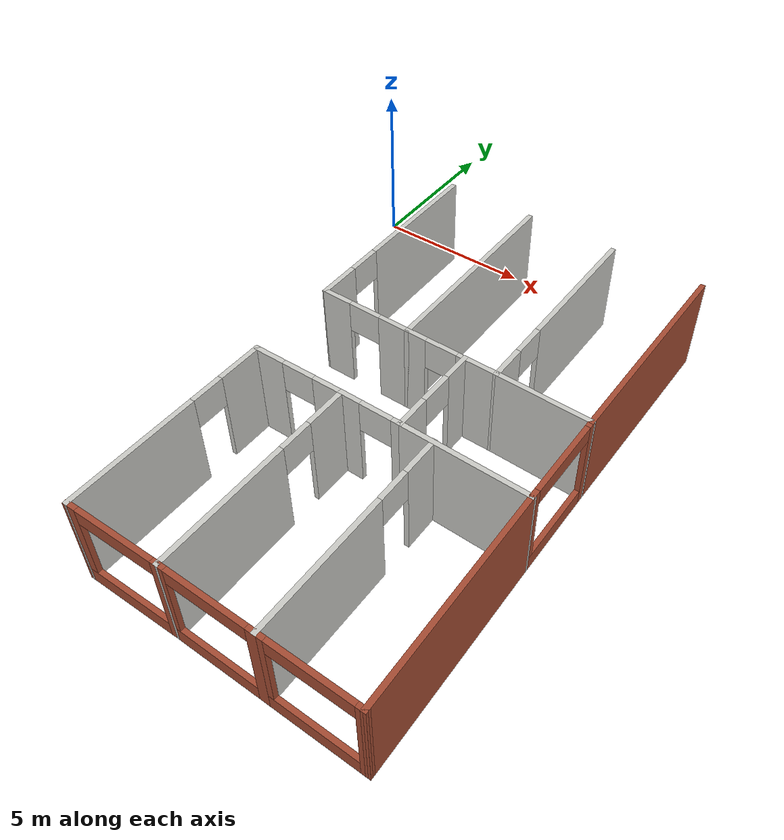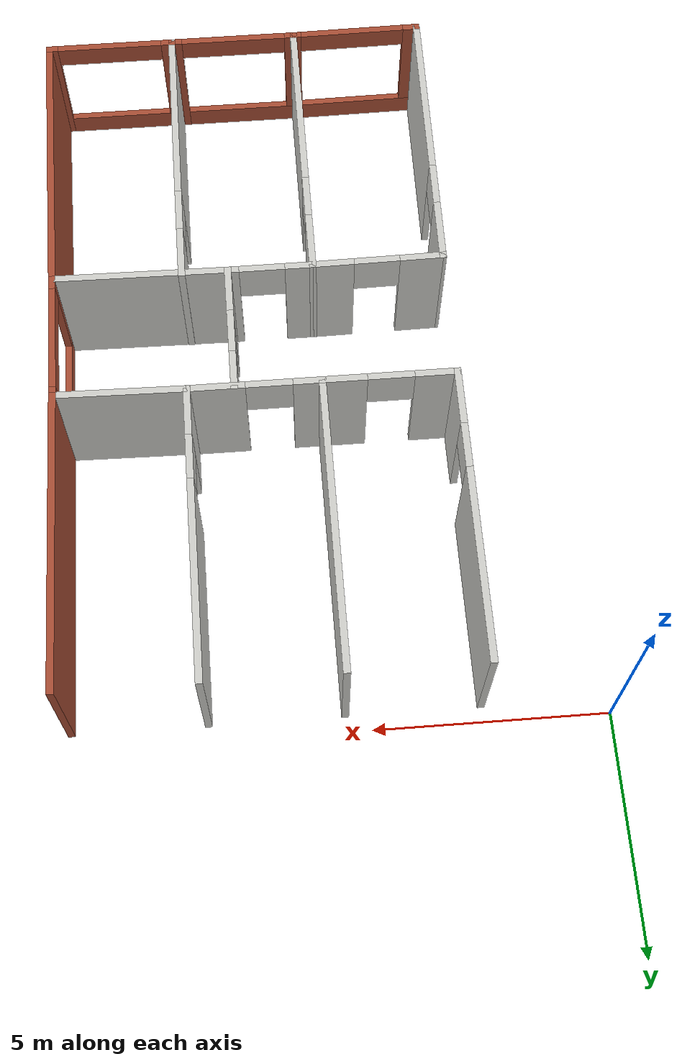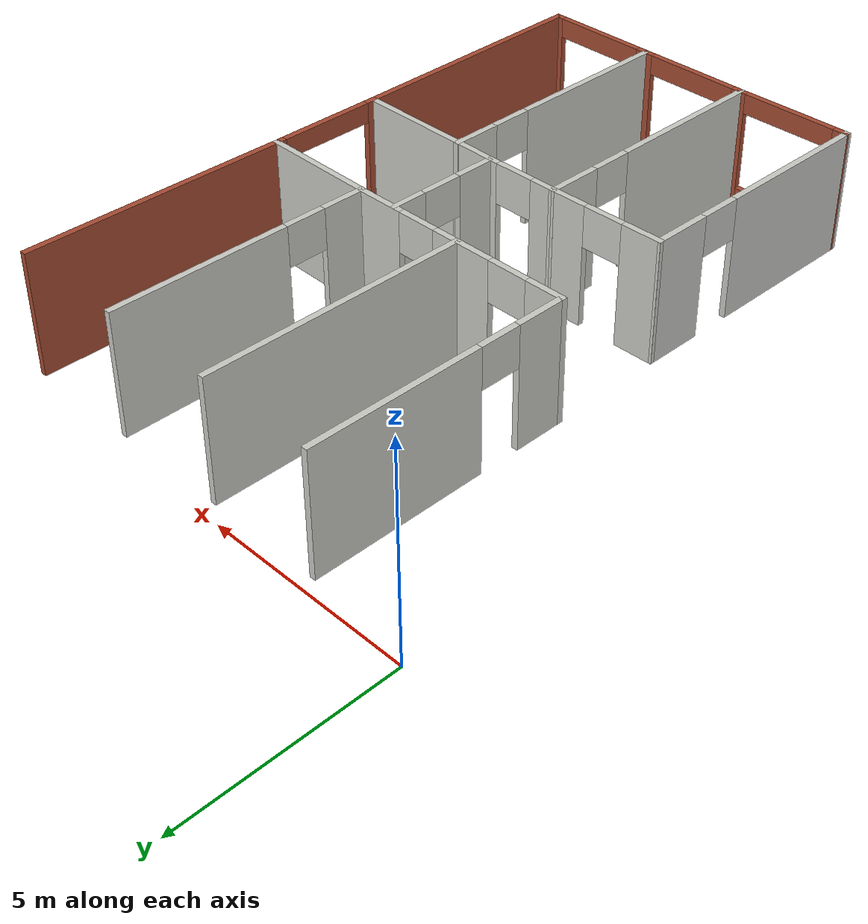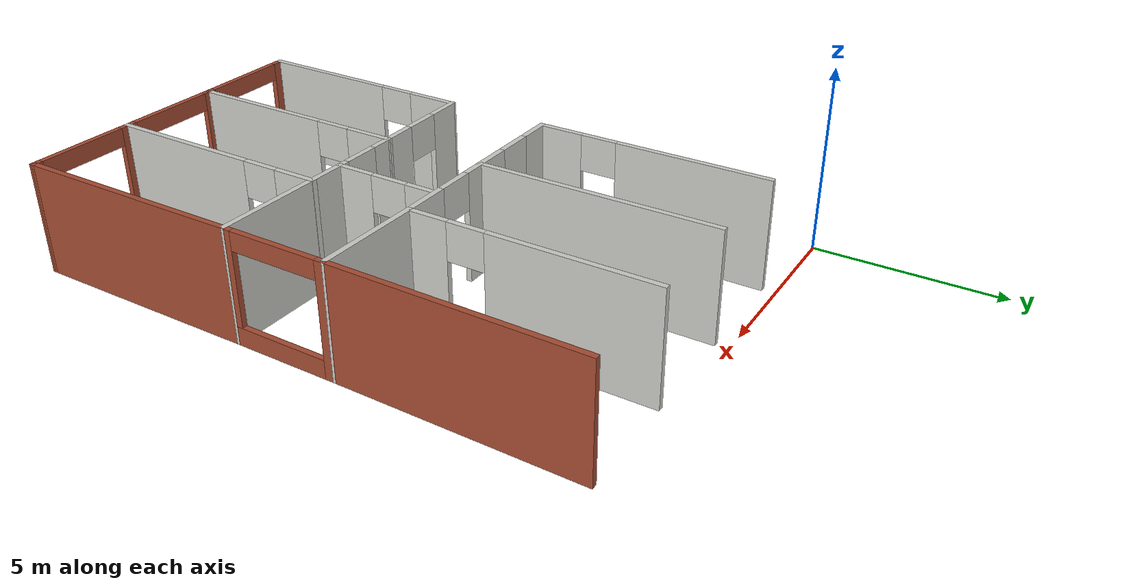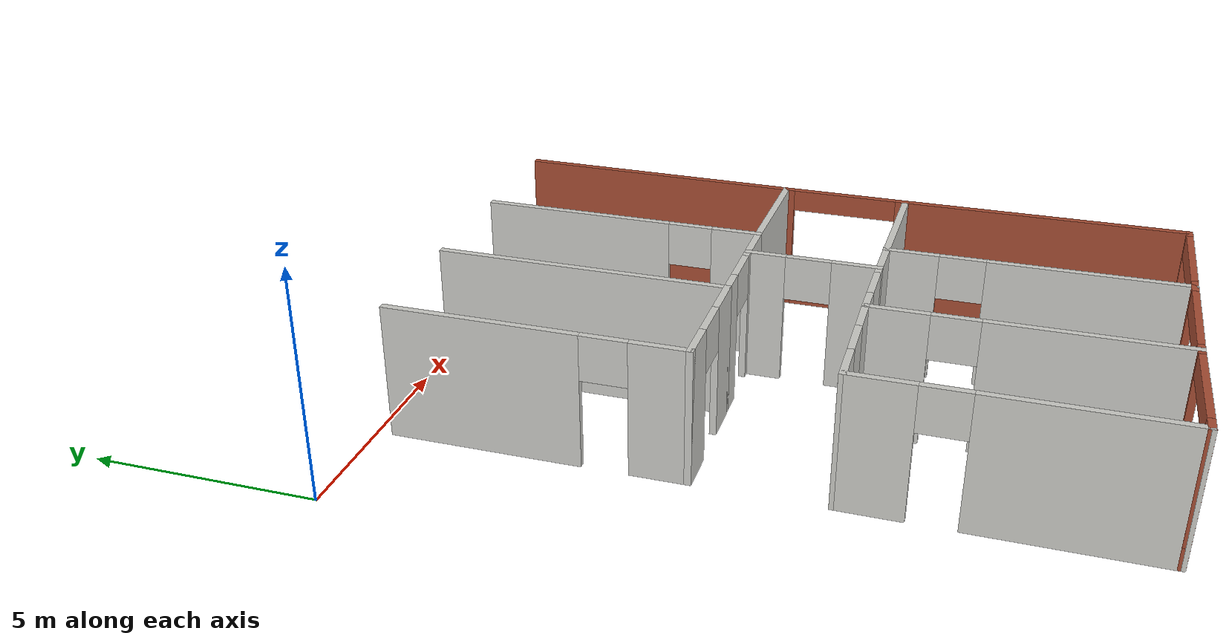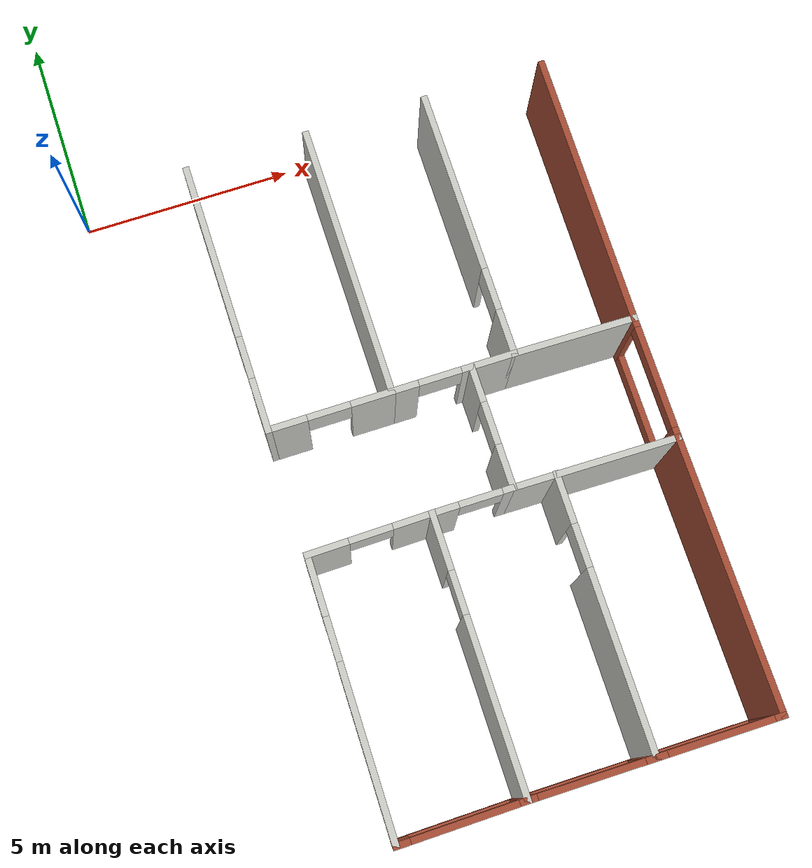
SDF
<sdf version="1.7">
 <model name="laboratory_world">
  <pose>0.666778 -6.1515 0 0 -0 0</pose>
  <link name="Wall_10">
   <pose>3.44822 -0.5985 0 0 -0 0</pose>
   <visual name="Wall_10_Visual_0">
    <pose>-1.01282 0 1.5 0 -0 0</pose>
    <geometry><box><size>0.974364 0.15 3</size></box></geometry>
    <material>
     <script><uri>file://media/materials/scripts/gazebo.material</uri><name>Gazebo/CeilingTiled</name></script>
     <ambient>0.921569 0.807843 0.615686 1</ambient>
    </material>
    <meta><layer>0</layer></meta>
   </visual>
   <collision name="Wall_10_Collision_0">
    <geometry><box><size>0.974364 0.15 3</size></box></geometry>
    <pose>-1.01282 0 1.5 0 -0 0</pose>
   </collision>
   <visual name="Wall_10_Visual_1">
    <pose>0.987182 0 1.5 0 -0 0</pose>
    <geometry><box><size>1.02564 0.15 3</size></box></geometry>
    <material>
     <script><uri>file://media/materials/scripts/gazebo.material</uri><name>Gazebo/CeilingTiled</name></script>
     <ambient>0.921569 0.807843 0.615686 1</ambient>
    </material>
    <meta><layer>0</layer></meta>
   </visual>
   <collision name="Wall_10_Collision_1">
    <geometry><box><size>1.02564 0.15 3</size></box></geometry>
    <pose>0.987182 0 1.5 0 -0 0</pose>
   </collision>
   <visual name="Wall_10_Visual_2">
    <pose>-0.025636 0 2.5 0 -0 0</pose>
    <geometry><box><size>1 0.15 1</size></box></geometry>
    <material>
     <script><uri>file://media/materials/scripts/gazebo.material</uri><name>Gazebo/CeilingTiled</name></script>
     <ambient>0.921569 0.807843 0.615686 1</ambient>
    </material>
    <meta><layer>0</layer></meta>
   </visual>
   <collision name="Wall_10_Collision_2">
    <geometry><box><size>1 0.15 1</size></box></geometry>
    <pose>-0.025636 0 2.5 0 -0 0</pose>
   </collision>
  </link>
  <link name="Wall_11">
   <collision name="Wall_11_Collision">
    <geometry><box><size>6.5 0.15 3</size></box></geometry>
    <pose>0 0 1.5 0 -0 0</pose>
   </collision>
   <visual name="Wall_11_Visual">
    <pose>0 0 1.5 0 -0 0</pose>
    <geometry><box><size>6.5 0.15 3</size></box></geometry>
    <material>
     <script><uri>file://media/materials/scripts/gazebo.material</uri><name>Gazebo/CeilingTiled</name></script>
     <ambient>0.921569 0.807843 0.615686 1</ambient>
    </material>
    <meta><layer>0</layer></meta>
   </visual>
   <pose>4.87322 2.5765 0 0 -0 1.5708</pose>
  </link>
  <link name="Wall_13">
   <pose>6.29822 -0.5985 0 0 -0 0</pose>
   <visual name="Wall_13_Visual_0">
    <pose>-1.1523 0 1.5 0 -0 0</pose>
    <geometry><box><size>0.695403 0.15 3</size></box></geometry>
    <material>
     <script><uri>file://media/materials/scripts/gazebo.material</uri><name>Gazebo/CeilingTiled</name></script>
     <ambient>0.921569 0.807843 0.615686 1</ambient>
    </material>
    <meta><layer>0</layer></meta>
   </visual>
   <collision name="Wall_13_Collision_0">
    <geometry><box><size>0.695403 0.15 3</size></box></geometry>
    <pose>-1.1523 0 1.5 0 -0 0</pose>
   </collision>
   <visual name="Wall_13_Visual_1">
    <pose>0.847702 0 1.5 0 -0 0</pose>
    <geometry><box><size>1.3046 0.15 3</size></box></geometry>
    <material>
     <script><uri>file://media/materials/scripts/gazebo.material</uri><name>Gazebo/CeilingTiled</name></script>
     <ambient>0.921569 0.807843 0.615686 1</ambient>
    </material>
    <meta><layer>0</layer></meta>
   </visual>
   <collision name="Wall_13_Collision_1">
    <geometry><box><size>1.3046 0.15 3</size></box></geometry>
    <pose>0.847702 0 1.5 0 -0 0</pose>
   </collision>
   <visual name="Wall_13_Visual_2">
    <pose>-0.304597 0 2.5 0 -0 0</pose>
    <geometry><box><size>1 0.15 1</size></box></geometry>
    <material>
     <script><uri>file://media/materials/scripts/gazebo.material</uri><name>Gazebo/CeilingTiled</name></script>
     <ambient>0.921569 0.807843 0.615686 1</ambient>
    </material>
    <meta><layer>0</layer></meta>
   </visual>
   <collision name="Wall_13_Collision_2">
    <geometry><box><size>1 0.15 1</size></box></geometry>
    <pose>-0.304597 0 2.5 0 -0 0</pose>
   </collision>
  </link>
  <link name="Wall_14">
   <pose>7.72322 2.5765 0 0 -0 1.5708</pose>
   <visual name="Wall_14_Visual_0">
    <pose>-2.67901 0 1.5 0 -0 0</pose>
    <geometry><box><size>1.14198 0.15 3</size></box></geometry>
    <material>
     <script><uri>file://media/materials/scripts/gazebo.material</uri><name>Gazebo/CeilingTiled</name></script>
     <ambient>0.921569 0.807843 0.615686 1</ambient>
    </material>
    <meta><layer>0</layer></meta>
   </visual>
   <collision name="Wall_14_Collision_0">
    <geometry><box><size>1.14198 0.15 3</size></box></geometry>
    <pose>-2.67901 0 1.5 0 -0 0</pose>
   </collision>
   <visual name="Wall_14_Visual_1">
    <pose>1.07099 0 1.5 0 -0 0</pose>
    <geometry><box><size>4.35802 0.15 3</size></box></geometry>
    <material>
     <script><uri>file://media/materials/scripts/gazebo.material</uri><name>Gazebo/CeilingTiled</name></script>
     <ambient>0.921569 0.807843 0.615686 1</ambient>
    </material>
    <meta><layer>0</layer></meta>
   </visual>
   <collision name="Wall_14_Collision_1">
    <geometry><box><size>4.35802 0.15 3</size></box></geometry>
    <pose>1.07099 0 1.5 0 -0 0</pose>
   </collision>
   <visual name="Wall_14_Visual_2">
    <pose>-1.60802 0 2.5 0 -0 0</pose>
    <geometry><box><size>1 0.15 1</size></box></geometry>
    <material>
     <script><uri>file://media/materials/scripts/gazebo.material</uri><name>Gazebo/CeilingTiled</name></script>
     <ambient>0.921569 0.807843 0.615686 1</ambient>
    </material>
    <meta><layer>0</layer></meta>
   </visual>
   <collision name="Wall_14_Collision_2">
    <geometry><box><size>1 0.15 1</size></box></geometry>
    <pose>-1.60802 0 2.5 0 -0 0</pose>
   </collision>
  </link>
  <link name="Wall_16">
   <collision name="Wall_16_Collision">
    <geometry><box><size>2.95339 0.15 3</size></box></geometry>
    <pose>0 0 1.5 0 -0 0</pose>
   </collision>
   <visual name="Wall_16_Visual">
    <pose>0 0 1.5 0 -0 0</pose>
    <geometry><box><size>2.95339 0.15 3</size></box></geometry>
    <material>
     <script><uri>file://media/materials/scripts/gazebo.material</uri><name>Gazebo/CeilingTiled</name></script>
     <ambient>0.921569 0.807843 0.615686 1</ambient>
    </material>
    <meta><layer>0</layer></meta>
   </visual>
   <pose>9.12472 -0.622 0 0 -0 -0.016766</pose>
  </link>
  <link name="Wall_17">
   <collision name="Wall_17_Collision">
    <geometry><box><size>6.54717 0.15 3</size></box></geometry>
    <pose>0 0 1.5 0 -0 0</pose>
   </collision>
   <visual name="Wall_17_Visual">
    <pose>0 0 1.5 0 -0 0</pose>
    <geometry><box><size>6.54717 0.15 3</size></box></geometry>
    <material>
     <script><uri>file://media/materials/scripts/gazebo.material</uri><name>Gazebo/Bricks</name></script>
     <ambient>0.760784 0.662745 0.627451 1</ambient>
    </material>
    <meta><layer>0</layer></meta>
   </visual>
   <pose>10.5497 2.553 0 0 -0 1.56345</pose>
  </link>
  <link name="Wall_21">
   <pose>10.5262 -2.0705 0 0 -0 -1.5708</pose>
   <visual name="Wall_21_Visual_0">
    <pose>-1.35631 0 1.5 0 -0 0</pose>
    <geometry><box><size>0.287384 0.15 3</size></box></geometry>
    <material>
     <script><uri>file://media/materials/scripts/gazebo.material</uri><name>Gazebo/Bricks</name></script>
     <ambient>0.760784 0.662745 0.627451 1</ambient>
    </material>
    <meta><layer>0</layer></meta>
   </visual>
   <collision name="Wall_21_Collision_0">
    <geometry><box><size>0.287384 0.15 3</size></box></geometry>
    <pose>-1.35631 0 1.5 0 -0 0</pose>
   </collision>
   <visual name="Wall_21_Visual_1">
    <pose>0.143692 0 0.25 0 -0 0</pose>
    <geometry><box><size>2.71262 0.15 0.5</size></box></geometry>
    <material>
     <script><uri>file://media/materials/scripts/gazebo.material</uri><name>Gazebo/Bricks</name></script>
     <ambient>0.760784 0.662745 0.627451 1</ambient>
    </material>
    <meta><layer>0</layer></meta>
   </visual>
   <collision name="Wall_21_Collision_1">
    <geometry><box><size>2.71262 0.15 0.5</size></box></geometry>
    <pose>0.143692 0 0.25 0 -0 0</pose>
   </collision>
   <visual name="Wall_21_Visual_2">
    <pose>1.34369 0 1.75 0 -0 0</pose>
    <geometry><box><size>0.312616 0.15 2.5</size></box></geometry>
    <material>
     <script><uri>file://media/materials/scripts/gazebo.material</uri><name>Gazebo/Bricks</name></script>
     <ambient>0.760784 0.662745 0.627451 1</ambient>
    </material>
    <meta><layer>0</layer></meta>
   </visual>
   <collision name="Wall_21_Collision_2">
    <geometry><box><size>0.312616 0.15 2.5</size></box></geometry>
    <pose>1.34369 0 1.75 0 -0 0</pose>
   </collision>
   <visual name="Wall_21_Visual_3">
    <pose>-0.012616 0 2.75 0 -0 0</pose>
    <geometry><box><size>2.4 0.15 0.5</size></box></geometry>
    <material>
     <script><uri>file://media/materials/scripts/gazebo.material</uri><name>Gazebo/Bricks</name></script>
     <ambient>0.760784 0.662745 0.627451 1</ambient>
    </material>
    <meta><layer>0</layer></meta>
   </visual>
   <collision name="Wall_21_Collision_3">
    <geometry><box><size>2.4 0.15 0.5</size></box></geometry>
    <pose>-0.012616 0 2.75 0 -0 0</pose>
   </collision>
  </link>
  <link name="Wall_22">
   <collision name="Wall_22_Collision">
    <geometry><box><size>3.95329 0.15 3</size></box></geometry>
    <pose>0 0 1.5 0 -0 0</pose>
   </collision>
   <visual name="Wall_22_Visual">
    <pose>0 0 1.5 0 -0 0</pose>
    <geometry><box><size>3.95329 0.15 3</size></box></geometry>
    <material>
     <script><uri>file://media/materials/scripts/gazebo.material</uri><name>Gazebo/CeilingTiled</name></script>
     <ambient>0.921569 0.807843 0.615686 1</ambient>
    </material>
    <meta><layer>0</layer></meta>
   </visual>
   <pose>8.62472 -3.472 0 0 -0 3.12923</pose>
  </link>
  <link name="Wall_23">
   <pose>6.72322 -2.0235 0 0 -0 1.5708</pose>
   <visual name="Wall_23_Visual_0">
    <pose>-0.956509 0 1.5 0 -0 0</pose>
    <geometry><box><size>1.08698 0.15 3</size></box></geometry>
    <material>
     <script><uri>file://media/materials/scripts/gazebo.material</uri><name>Gazebo/CeilingTiled</name></script>
     <ambient>0.921569 0.807843 0.615686 1</ambient>
    </material>
    <meta><layer>0</layer></meta>
   </visual>
   <collision name="Wall_23_Collision_0">
    <geometry><box><size>1.08698 0.15 3</size></box></geometry>
    <pose>-0.956509 0 1.5 0 -0 0</pose>
   </collision>
   <visual name="Wall_23_Visual_1">
    <pose>1.04349 0 1.5 0 -0 0</pose>
    <geometry><box><size>0.913017 0.15 3</size></box></geometry>
    <material>
     <script><uri>file://media/materials/scripts/gazebo.material</uri><name>Gazebo/CeilingTiled</name></script>
     <ambient>0.921569 0.807843 0.615686 1</ambient>
    </material>
    <meta><layer>0</layer></meta>
   </visual>
   <collision name="Wall_23_Collision_1">
    <geometry><box><size>0.913017 0.15 3</size></box></geometry>
    <pose>1.04349 0 1.5 0 -0 0</pose>
   </collision>
   <visual name="Wall_23_Visual_2">
    <pose>0.086983 0 2.5 0 -0 0</pose>
    <geometry><box><size>1 0.15 1</size></box></geometry>
    <material>
     <script><uri>file://media/materials/scripts/gazebo.material</uri><name>Gazebo/CeilingTiled</name></script>
     <ambient>0.921569 0.807843 0.615686 1</ambient>
    </material>
    <meta><layer>0</layer></meta>
   </visual>
   <collision name="Wall_23_Collision_2">
    <geometry><box><size>1 0.15 1</size></box></geometry>
    <pose>0.086983 0 2.5 0 -0 0</pose>
   </collision>
  </link>
  <link name="Wall_26">
   <collision name="Wall_26_Collision">
    <geometry><box><size>6.45317 0.15 3</size></box></geometry>
    <pose>0 0 1.5 0 -0 0</pose>
   </collision>
   <visual name="Wall_26_Visual">
    <pose>0 0 1.5 0 -0 0</pose>
    <geometry><box><size>6.45317 0.15 3</size></box></geometry>
    <material>
     <script><uri>file://media/materials/scripts/gazebo.material</uri><name>Gazebo/Bricks</name></script>
     <ambient>0.760784 0.662745 0.627451 1</ambient>
    </material>
    <meta><layer>0</layer></meta>
   </visual>
   <pose>10.5497 -6.647 0 0 -0 -1.56334</pose>
  </link>
  <link name="Wall_29">
   <pose>9.14822 -9.7985 0 0 -0 3.14159</pose>
   <visual name="Wall_29_Visual_0">
    <pose>-1.36291 0 1.5 0 -0 0</pose>
    <geometry><box><size>0.274173 0.15 3</size></box></geometry>
    <material>
     <script><uri>file://media/materials/scripts/gazebo.material</uri><name>Gazebo/Bricks</name></script>
     <ambient>0.760784 0.662745 0.627451 1</ambient>
    </material>
    <meta><layer>0</layer></meta>
   </visual>
   <collision name="Wall_29_Collision_0">
    <geometry><box><size>0.274173 0.15 3</size></box></geometry>
    <pose>-1.36291 0 1.5 0 -0 0</pose>
   </collision>
   <visual name="Wall_29_Visual_1">
    <pose>0.137086 0 0.25 0 -0 0</pose>
    <geometry><box><size>2.72583 0.15 0.5</size></box></geometry>
    <material>
     <script><uri>file://media/materials/scripts/gazebo.material</uri><name>Gazebo/Bricks</name></script>
     <ambient>0.760784 0.662745 0.627451 1</ambient>
    </material>
    <meta><layer>0</layer></meta>
   </visual>
   <collision name="Wall_29_Collision_1">
    <geometry><box><size>2.72583 0.15 0.5</size></box></geometry>
    <pose>0.137086 0 0.25 0 -0 0</pose>
   </collision>
   <visual name="Wall_29_Visual_2">
    <pose>1.33709 0 1.75 0 -0 0</pose>
    <geometry><box><size>0.325827 0.15 2.5</size></box></geometry>
    <material>
     <script><uri>file://media/materials/scripts/gazebo.material</uri><name>Gazebo/Bricks</name></script>
     <ambient>0.760784 0.662745 0.627451 1</ambient>
    </material>
    <meta><layer>0</layer></meta>
   </visual>
   <collision name="Wall_29_Collision_2">
    <geometry><box><size>0.325827 0.15 2.5</size></box></geometry>
    <pose>1.33709 0 1.75 0 -0 0</pose>
   </collision>
   <visual name="Wall_29_Visual_3">
    <pose>-0.025827 0 2.75 0 -0 0</pose>
    <geometry><box><size>2.4 0.15 0.5</size></box></geometry>
    <material>
     <script><uri>file://media/materials/scripts/gazebo.material</uri><name>Gazebo/Bricks</name></script>
     <ambient>0.760784 0.662745 0.627451 1</ambient>
    </material>
    <meta><layer>0</layer></meta>
   </visual>
   <collision name="Wall_29_Collision_3">
    <geometry><box><size>2.4 0.15 0.5</size></box></geometry>
    <pose>-0.025827 0 2.75 0 -0 0</pose>
   </collision>
  </link>
  <link name="Wall_31">
   <pose>7.72322 -6.6235 0 0 -0 1.5708</pose>
   <visual name="Wall_31_Visual_0">
    <pose>-1.10988 0 1.5 0 -0 0</pose>
    <geometry><box><size>4.28024 0.15 3</size></box></geometry>
    <material>
     <script><uri>file://media/materials/scripts/gazebo.material</uri><name>Gazebo/CeilingTiled</name></script>
     <ambient>0.921569 0.807843 0.615686 1</ambient>
    </material>
    <meta><layer>0</layer></meta>
   </visual>
   <collision name="Wall_31_Collision_0">
    <geometry><box><size>4.28024 0.15 3</size></box></geometry>
    <pose>-1.10988 0 1.5 0 -0 0</pose>
   </collision>
   <visual name="Wall_31_Visual_1">
    <pose>2.64012 0 1.5 0 -0 0</pose>
    <geometry><box><size>1.21976 0.15 3</size></box></geometry>
    <material>
     <script><uri>file://media/materials/scripts/gazebo.material</uri><name>Gazebo/CeilingTiled</name></script>
     <ambient>0.921569 0.807843 0.615686 1</ambient>
    </material>
    <meta><layer>0</layer></meta>
   </visual>
   <collision name="Wall_31_Collision_1">
    <geometry><box><size>1.21976 0.15 3</size></box></geometry>
    <pose>2.64012 0 1.5 0 -0 0</pose>
   </collision>
   <visual name="Wall_31_Visual_2">
    <pose>1.53024 0 2.5 0 -0 0</pose>
    <geometry><box><size>1 0.15 1</size></box></geometry>
    <material>
     <script><uri>file://media/materials/scripts/gazebo.material</uri><name>Gazebo/CeilingTiled</name></script>
     <ambient>0.921569 0.807843 0.615686 1</ambient>
    </material>
    <meta><layer>0</layer></meta>
   </visual>
   <collision name="Wall_31_Collision_2">
    <geometry><box><size>1 0.15 1</size></box></geometry>
    <pose>1.53024 0 2.5 0 -0 0</pose>
   </collision>
  </link>
  <link name="Wall_37">
   <pose>4.87322 -6.6235 0 0 -0 1.5708</pose>
   <visual name="Wall_37_Visual_0">
    <pose>-1.18636 0 1.5 0 -0 0</pose>
    <geometry><box><size>4.12729 0.15 3</size></box></geometry>
    <material>
     <script><uri>file://media/materials/scripts/gazebo.material</uri><name>Gazebo/CeilingTiled</name></script>
     <ambient>0.921569 0.807843 0.615686 1</ambient>
    </material>
    <meta><layer>0</layer></meta>
   </visual>
   <collision name="Wall_37_Collision_0">
    <geometry><box><size>4.12729 0.15 3</size></box></geometry>
    <pose>-1.18636 0 1.5 0 -0 0</pose>
   </collision>
   <visual name="Wall_37_Visual_1">
    <pose>2.56364 0 1.5 0 -0 0</pose>
    <geometry><box><size>1.37271 0.15 3</size></box></geometry>
    <material>
     <script><uri>file://media/materials/scripts/gazebo.material</uri><name>Gazebo/CeilingTiled</name></script>
     <ambient>0.921569 0.807843 0.615686 1</ambient>
    </material>
    <meta><layer>0</layer></meta>
   </visual>
   <collision name="Wall_37_Collision_1">
    <geometry><box><size>1.37271 0.15 3</size></box></geometry>
    <pose>2.56364 0 1.5 0 -0 0</pose>
   </collision>
   <visual name="Wall_37_Visual_2">
    <pose>1.37729 0 2.5 0 -0 0</pose>
    <geometry><box><size>1 0.15 1</size></box></geometry>
    <material>
     <script><uri>file://media/materials/scripts/gazebo.material</uri><name>Gazebo/CeilingTiled</name></script>
     <ambient>0.921569 0.807843 0.615686 1</ambient>
    </material>
    <meta><layer>0</layer></meta>
   </visual>
   <collision name="Wall_37_Collision_2">
    <geometry><box><size>1 0.15 1</size></box></geometry>
    <pose>1.37729 0 2.5 0 -0 0</pose>
   </collision>
  </link>
  <link name="Wall_38">
   <pose>3.44822 -3.4685 0 0 -0 -3.12756</pose>
   <visual name="Wall_38_Visual_0">
    <pose>-1.00981 0 1.5 0 -0 0</pose>
    <geometry><box><size>0.981532 0.15 3</size></box></geometry>
    <material>
     <script><uri>file://media/materials/scripts/gazebo.material</uri><name>Gazebo/CeilingTiled</name></script>
     <ambient>0.921569 0.807843 0.615686 1</ambient>
    </material>
    <meta><layer>0</layer></meta>
   </visual>
   <collision name="Wall_38_Collision_0">
    <geometry><box><size>0.981532 0.15 3</size></box></geometry>
    <pose>-1.00981 0 1.5 0 -0 0</pose>
   </collision>
   <visual name="Wall_38_Visual_1">
    <pose>0.990766 0 1.5 0 -0 0</pose>
    <geometry><box><size>1.01962 0.15 3</size></box></geometry>
    <material>
     <script><uri>file://media/materials/scripts/gazebo.material</uri><name>Gazebo/CeilingTiled</name></script>
     <ambient>0.921569 0.807843 0.615686 1</ambient>
    </material>
    <meta><layer>0</layer></meta>
   </visual>
   <collision name="Wall_38_Collision_1">
    <geometry><box><size>1.01962 0.15 3</size></box></geometry>
    <pose>0.990766 0 1.5 0 -0 0</pose>
   </collision>
   <visual name="Wall_38_Visual_2">
    <pose>-0.019042 0 2.5 0 -0 0</pose>
    <geometry><box><size>1 0.15 1</size></box></geometry>
    <material>
     <script><uri>file://media/materials/scripts/gazebo.material</uri><name>Gazebo/CeilingTiled</name></script>
     <ambient>0.921569 0.807843 0.615686 1</ambient>
    </material>
    <meta><layer>0</layer></meta>
   </visual>
   <collision name="Wall_38_Collision_2">
    <geometry><box><size>1 0.15 1</size></box></geometry>
    <pose>-0.019042 0 2.5 0 -0 0</pose>
   </collision>
  </link>
  <link name="Wall_42">
   <pose>5.79822 -3.4485 0 0 -0 0</pose>
   <visual name="Wall_42_Visual_0">
    <pose>-0.658719 0 1.5 0 -0 0</pose>
    <geometry><box><size>0.682562 0.15 3</size></box></geometry>
    <material>
     <script><uri>file://media/materials/scripts/gazebo.material</uri><name>Gazebo/CeilingTiled</name></script>
     <ambient>0.921569 0.807843 0.615686 1</ambient>
    </material>
    <meta><layer>0</layer></meta>
   </visual>
   <collision name="Wall_42_Collision_0">
    <geometry><box><size>0.682562 0.15 3</size></box></geometry>
    <pose>-0.658719 0 1.5 0 -0 0</pose>
   </collision>
   <visual name="Wall_42_Visual_1">
    <pose>0.841281 0 1.5 0 -0 0</pose>
    <geometry><box><size>0.317438 0.15 3</size></box></geometry>
    <material>
     <script><uri>file://media/materials/scripts/gazebo.material</uri><name>Gazebo/CeilingTiled</name></script>
     <ambient>0.921569 0.807843 0.615686 1</ambient>
    </material>
    <meta><layer>0</layer></meta>
   </visual>
   <collision name="Wall_42_Collision_1">
    <geometry><box><size>0.317438 0.15 3</size></box></geometry>
    <pose>0.841281 0 1.5 0 -0 0</pose>
   </collision>
   <visual name="Wall_42_Visual_2">
    <pose>0.182562 0 2.5 0 -0 0</pose>
    <geometry><box><size>1 0.15 1</size></box></geometry>
    <material>
     <script><uri>file://media/materials/scripts/gazebo.material</uri><name>Gazebo/CeilingTiled</name></script>
     <ambient>0.921569 0.807843 0.615686 1</ambient>
    </material>
    <meta><layer>0</layer></meta>
   </visual>
   <collision name="Wall_42_Collision_2">
    <geometry><box><size>1 0.15 1</size></box></geometry>
    <pose>0.182562 0 2.5 0 -0 0</pose>
   </collision>
  </link>
  <link name="Wall_49">
   <pose>1.99972 -6.6635 0 0 -0 -1.5782</pose>
   <visual name="Wall_49_Visual_0">
    <pose>-2.52256 0 1.5 0 -0 0</pose>
    <geometry><box><size>1.45489 0.15 3</size></box></geometry>
    <material>
     <script><uri>file://media/materials/scripts/gazebo.material</uri><name>Gazebo/CeilingTiled</name></script>
     <ambient>0.921569 0.807843 0.615686 1</ambient>
    </material>
    <meta><layer>0</layer></meta>
   </visual>
   <collision name="Wall_49_Collision_0">
    <geometry><box><size>1.45489 0.15 3</size></box></geometry>
    <pose>-2.52256 0 1.5 0 -0 0</pose>
   </collision>
   <visual name="Wall_49_Visual_1">
    <pose>1.22744 0 1.5 0 -0 0</pose>
    <geometry><box><size>4.04511 0.15 3</size></box></geometry>
    <material>
     <script><uri>file://media/materials/scripts/gazebo.material</uri><name>Gazebo/CeilingTiled</name></script>
     <ambient>0.921569 0.807843 0.615686 1</ambient>
    </material>
    <meta><layer>0</layer></meta>
   </visual>
   <collision name="Wall_49_Collision_1">
    <geometry><box><size>4.04511 0.15 3</size></box></geometry>
    <pose>1.22744 0 1.5 0 -0 0</pose>
   </collision>
   <visual name="Wall_49_Visual_2">
    <pose>-1.29511 0 2.5 0 -0 0</pose>
    <geometry><box><size>1 0.15 1</size></box></geometry>
    <material>
     <script><uri>file://media/materials/scripts/gazebo.material</uri><name>Gazebo/CeilingTiled</name></script>
     <ambient>0.921569 0.807843 0.615686 1</ambient>
    </material>
    <meta><layer>0</layer></meta>
   </visual>
   <collision name="Wall_49_Collision_2">
    <geometry><box><size>1 0.15 1</size></box></geometry>
    <pose>-1.29511 0 2.5 0 -0 0</pose>
   </collision>
  </link>
  <link name="Wall_51">
   <pose>6.29822 -9.7985 0 0 -0 3.14159</pose>
   <visual name="Wall_51_Visual_0">
    <pose>-1.34465 0 1.5 0 -0 0</pose>
    <geometry><box><size>0.310696 0.15 3</size></box></geometry>
    <material>
     <script><uri>file://media/materials/scripts/gazebo.material</uri><name>Gazebo/Bricks</name></script>
     <ambient>0.760784 0.662745 0.627451 1</ambient>
    </material>
    <meta><layer>0</layer></meta>
   </visual>
   <collision name="Wall_51_Collision_0">
    <geometry><box><size>0.310696 0.15 3</size></box></geometry>
    <pose>-1.34465 0 1.5 0 -0 0</pose>
   </collision>
   <visual name="Wall_51_Visual_1">
    <pose>0.155348 0 0.25 0 -0 0</pose>
    <geometry><box><size>2.6893 0.15 0.5</size></box></geometry>
    <material>
     <script><uri>file://media/materials/scripts/gazebo.material</uri><name>Gazebo/Bricks</name></script>
     <ambient>0.760784 0.662745 0.627451 1</ambient>
    </material>
    <meta><layer>0</layer></meta>
   </visual>
   <collision name="Wall_51_Collision_1">
    <geometry><box><size>2.6893 0.15 0.5</size></box></geometry>
    <pose>0.155348 0 0.25 0 -0 0</pose>
   </collision>
   <visual name="Wall_51_Visual_2">
    <pose>1.35535 0 1.75 0 -0 0</pose>
    <geometry><box><size>0.289304 0.15 2.5</size></box></geometry>
    <material>
     <script><uri>file://media/materials/scripts/gazebo.material</uri><name>Gazebo/Bricks</name></script>
     <ambient>0.760784 0.662745 0.627451 1</ambient>
    </material>
    <meta><layer>0</layer></meta>
   </visual>
   <collision name="Wall_51_Collision_2">
    <geometry><box><size>0.289304 0.15 2.5</size></box></geometry>
    <pose>1.35535 0 1.75 0 -0 0</pose>
   </collision>
   <visual name="Wall_51_Visual_3">
    <pose>0.010696 0 2.75 0 -0 0</pose>
    <geometry><box><size>2.4 0.15 0.5</size></box></geometry>
    <material>
     <script><uri>file://media/materials/scripts/gazebo.material</uri><name>Gazebo/Bricks</name></script>
     <ambient>0.760784 0.662745 0.627451 1</ambient>
    </material>
    <meta><layer>0</layer></meta>
   </visual>
   <collision name="Wall_51_Collision_3">
    <geometry><box><size>2.4 0.15 0.5</size></box></geometry>
    <pose>0.010696 0 2.75 0 -0 0</pose>
   </collision>
  </link>
  <link name="Wall_52">
   <pose>3.42472 -9.8185 0 0 -0 -3.12779</pose>
   <visual name="Wall_52_Visual_0">
    <pose>-1.39736 0 1.5 0 -0 0</pose>
    <geometry><box><size>0.252182 0.15 3</size></box></geometry>
    <material>
     <script><uri>file://media/materials/scripts/gazebo.material</uri><name>Gazebo/Bricks</name></script>
     <ambient>0.921569 0.807843 0.615686 1</ambient>
    </material>
    <meta><layer>0</layer></meta>
   </visual>
   <collision name="Wall_52_Collision_0">
    <geometry><box><size>0.252182 0.15 3</size></box></geometry>
    <pose>-1.39736 0 1.5 0 -0 0</pose>
   </collision>
   <visual name="Wall_52_Visual_1">
    <pose>0.126091 0 0.25 0 -0 0</pose>
    <geometry><box><size>2.79472 0.15 0.5</size></box></geometry>
    <material>
     <script><uri>file://media/materials/scripts/gazebo.material</uri><name>Gazebo/Bricks</name></script>
     <ambient>0.921569 0.807843 0.615686 1</ambient>
    </material>
    <meta><layer>0</layer></meta>
   </visual>
   <collision name="Wall_52_Collision_1">
    <geometry><box><size>2.79472 0.15 0.5</size></box></geometry>
    <pose>0.126091 0 0.25 0 -0 0</pose>
   </collision>
   <visual name="Wall_52_Visual_2">
    <pose>1.32609 0 1.75 0 -0 0</pose>
    <geometry><box><size>0.394716 0.15 2.5</size></box></geometry>
    <material>
     <script><uri>file://media/materials/scripts/gazebo.material</uri><name>Gazebo/Bricks</name></script>
     <ambient>0.921569 0.807843 0.615686 1</ambient>
    </material>
    <meta><layer>0</layer></meta>
   </visual>
   <collision name="Wall_52_Collision_2">
    <geometry><box><size>0.394716 0.15 2.5</size></box></geometry>
    <pose>1.32609 0 1.75 0 -0 0</pose>
   </collision>
   <visual name="Wall_52_Visual_3">
    <pose>-0.071267 0 2.75 0 -0 0</pose>
    <geometry><box><size>2.4 0.15 0.5</size></box></geometry>
    <material>
     <script><uri>file://media/materials/scripts/gazebo.material</uri><name>Gazebo/Bricks</name></script>
     <ambient>0.921569 0.807843 0.615686 1</ambient>
    </material>
    <meta><layer>0</layer></meta>
   </visual>
   <collision name="Wall_52_Collision_3">
    <geometry><box><size>2.4 0.15 0.5</size></box></geometry>
    <pose>-0.071267 0 2.75 0 -0 0</pose>
   </collision>
  </link>
  <link name="Wall_8">
   <pose>2.02322 2.5765 0 0 -0 1.5708</pose>
   <visual name="Wall_8_Visual_0">
    <pose>-2.6003 0 1.5 0 -0 0</pose>
    <geometry><box><size>1.2994 0.15 3</size></box></geometry>
    <material>
     <script><uri>file://media/materials/scripts/gazebo.material</uri><name>Gazebo/CeilingTiled</name></script>
     <ambient>0.921569 0.807843 0.615686 1</ambient>
    </material>
    <meta><layer>0</layer></meta>
   </visual>
   <collision name="Wall_8_Collision_0">
    <geometry><box><size>1.2994 0.15 3</size></box></geometry>
    <pose>-2.6003 0 1.5 0 -0 0</pose>
   </collision>
   <visual name="Wall_8_Visual_1">
    <pose>1.1497 0 1.5 0 -0 0</pose>
    <geometry><box><size>4.20061 0.15 3</size></box></geometry>
    <material>
     <script><uri>file://media/materials/scripts/gazebo.material</uri><name>Gazebo/CeilingTiled</name></script>
     <ambient>0.921569 0.807843 0.615686 1</ambient>
    </material>
    <meta><layer>0</layer></meta>
   </visual>
   <collision name="Wall_8_Collision_1">
    <geometry><box><size>4.20061 0.15 3</size></box></geometry>
    <pose>1.1497 0 1.5 0 -0 0</pose>
   </collision>
   <visual name="Wall_8_Visual_2">
    <pose>-1.4506 0 2.5 0 -0 0</pose>
    <geometry><box><size>1 0.15 1</size></box></geometry>
    <material>
     <script><uri>file://media/materials/scripts/gazebo.material</uri><name>Gazebo/CeilingTiled</name></script>
     <ambient>0.921569 0.807843 0.615686 1</ambient>
    </material>
    <meta><layer>0</layer></meta>
   </visual>
   <collision name="Wall_8_Collision_2">
    <geometry><box><size>1 0.15 1</size></box></geometry>
    <pose>-1.4506 0 2.5 0 -0 0</pose>
   </collision>
  </link>
  <static>1</static>
 </model>
</sdf>
